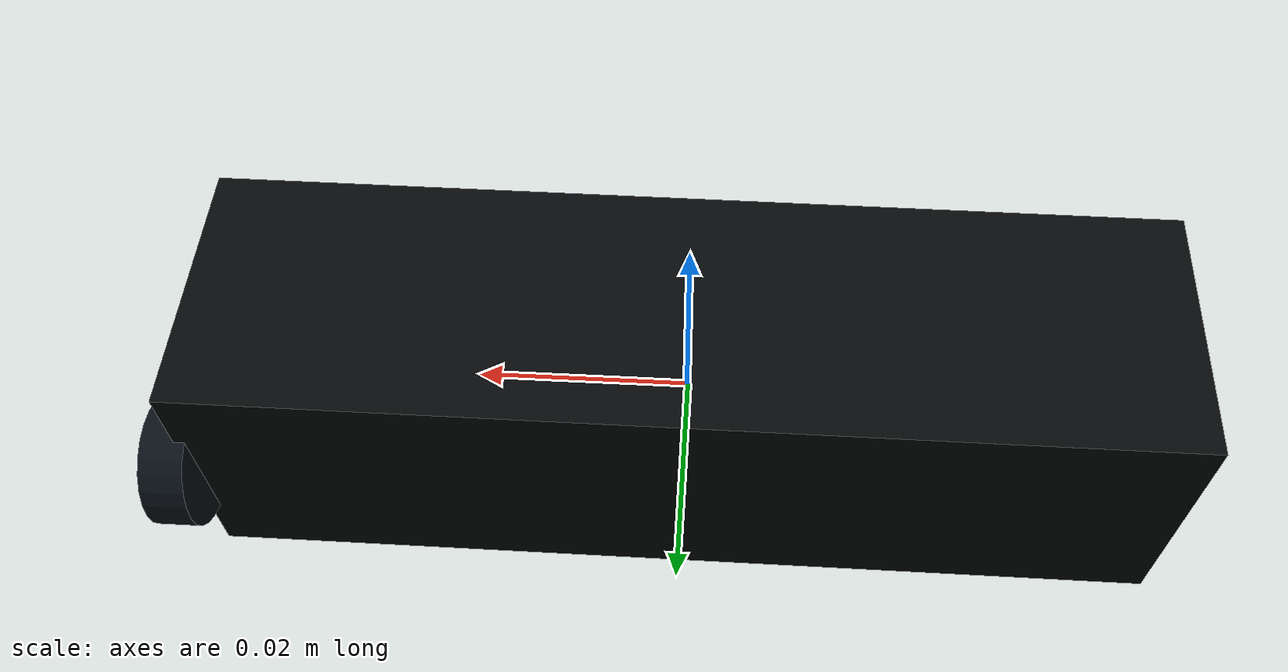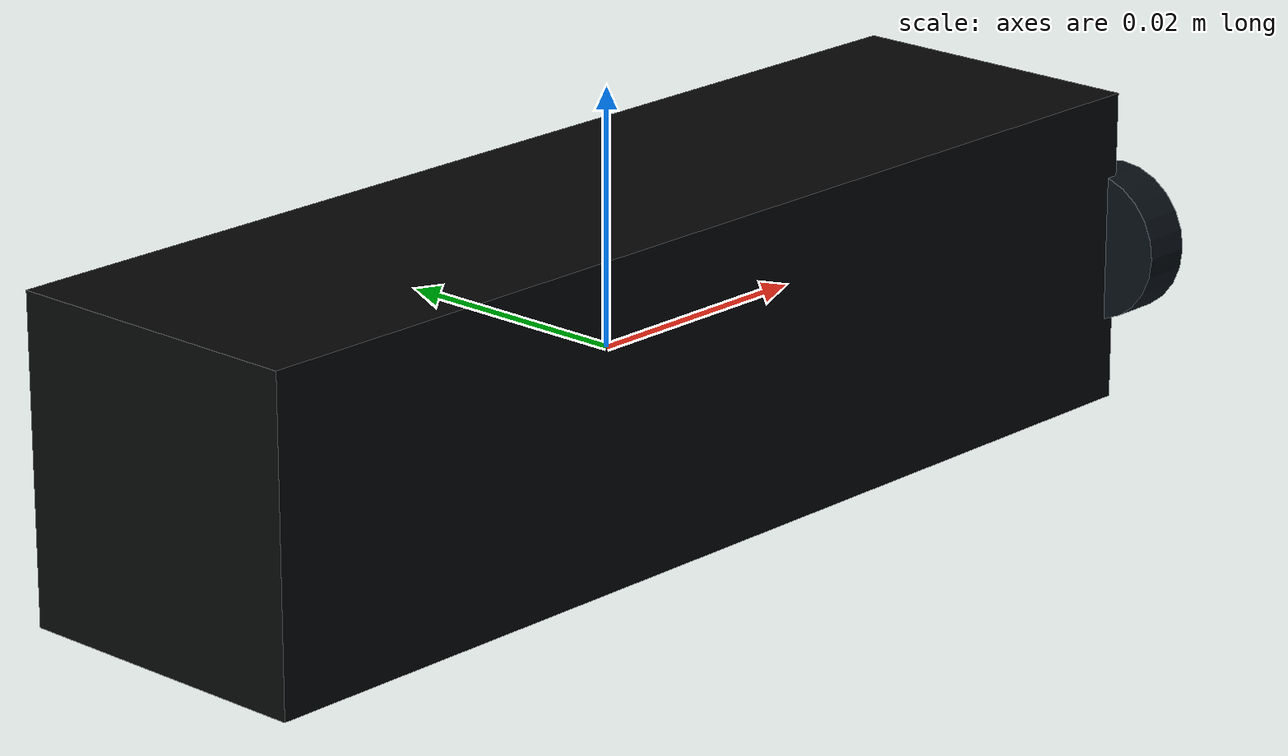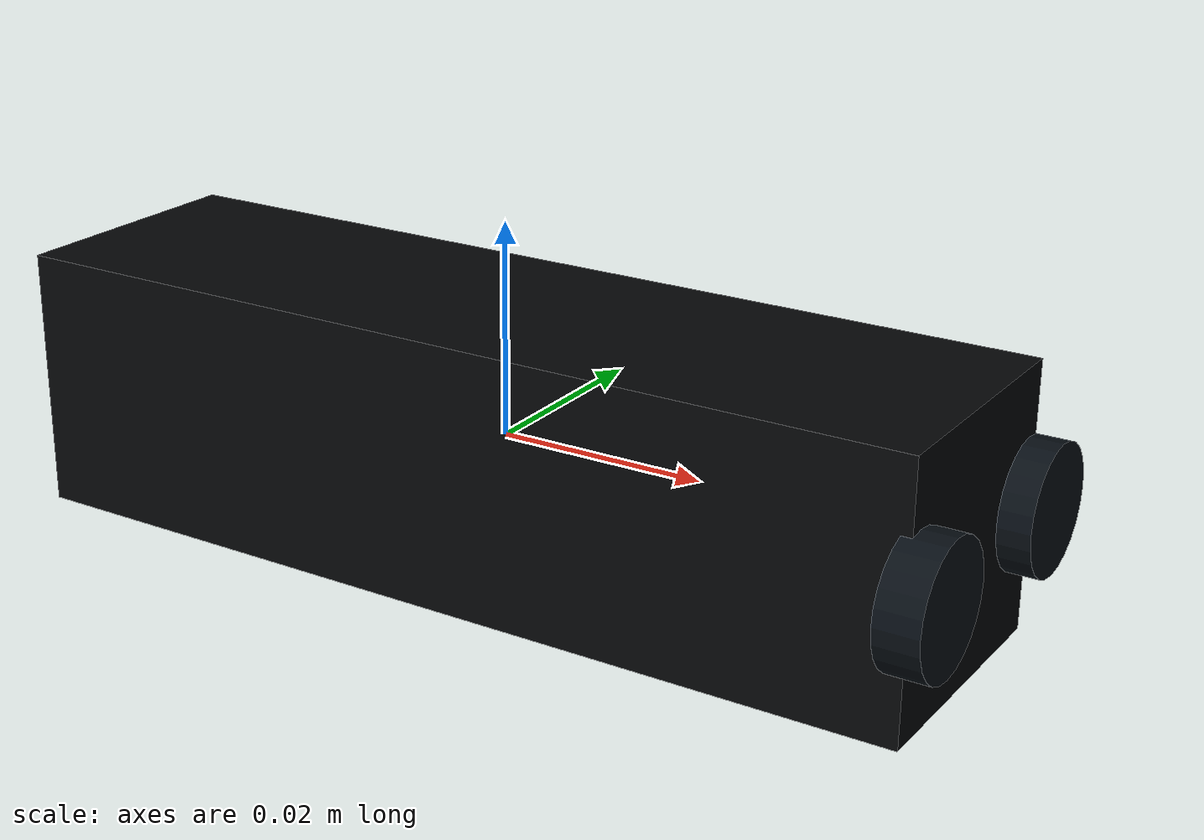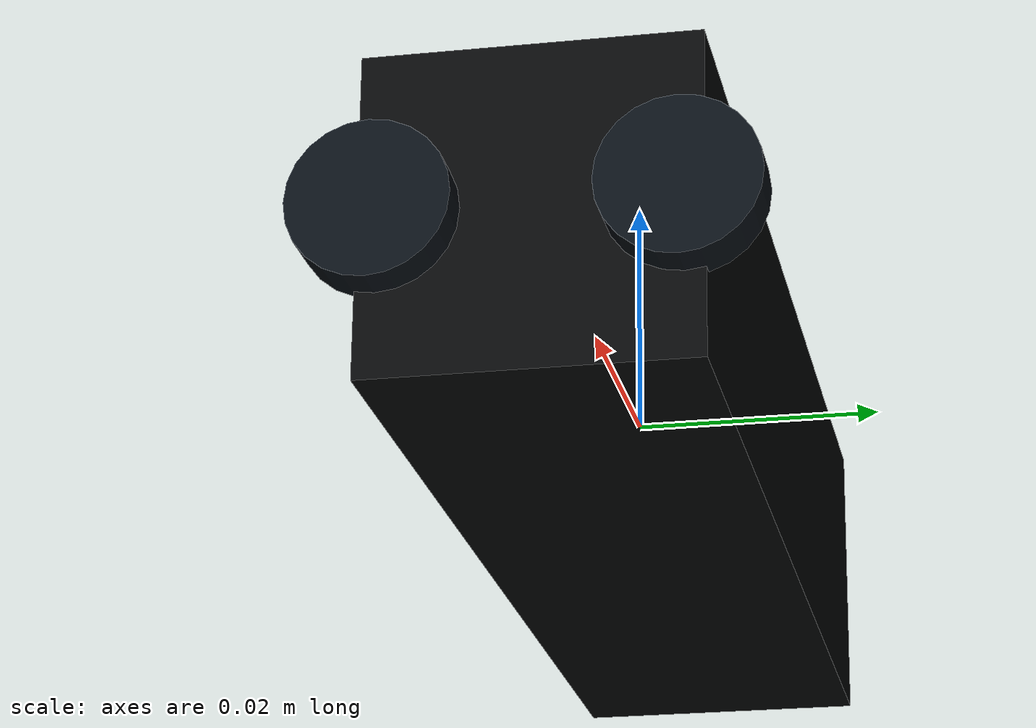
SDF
<?xml version="1.0" ?>
<sdf version="1.10">
  <model name="d435i_downward_rgbd">
    <static>false</static>
    <self_collide>false</self_collide>
    <link name="camera_link">
      <gravity>false</gravity>
      <kinematic>true</kinematic>
      <visual name="body">
        <geometry><box><size>0.09 0.025 0.025</size></box></geometry>
        <material><diffuse>0.02 0.025 0.03 1</diffuse><specular>0.35 0.35 0.35 1</specular></material>
      </visual>
      <visual name="left_lens">
        <pose>0.046 0.011 0 0 1.5708 0</pose>
        <geometry><cylinder><radius>0.006</radius><length>0.004</length></cylinder></geometry>
        <material><diffuse>0.03 0.055 0.08 1</diffuse><specular>0.6 0.6 0.6 1</specular></material>
      </visual>
      <visual name="right_lens">
        <pose>0.046 -0.011 0 0 1.5708 0</pose>
        <geometry><cylinder><radius>0.006</radius><length>0.004</length></cylinder></geometry>
        <material><diffuse>0.03 0.055 0.08 1</diffuse><specular>0.6 0.6 0.6 1</specular></material>
      </visual>
      <!-- With fixed-level follower attitude, +90 deg points the RGB-D optical axis downward. -->
      <sensor name="d435i_rgbd_down" type="rgbd_camera">
        <pose>0 0 -0.08 0 1.57079632679 0</pose>
        <always_on>1</always_on>
        <update_rate>15</update_rate>
        <visualize>true</visualize>
        <topic>/camera/camera</topic>
        <camera>
          <horizontal_fov>1.21126</horizontal_fov>
          <image>
            <width>640</width>
            <height>480</height>
            <format>R8G8B8</format>
          </image>
          <clip>
            <near>0.105</near>
            <far>12.0</far>
          </clip>
        </camera>
      </sensor>
    </link>
  </model>
</sdf>
